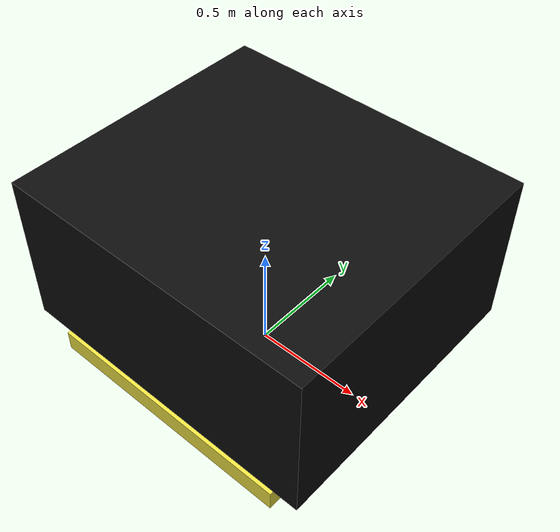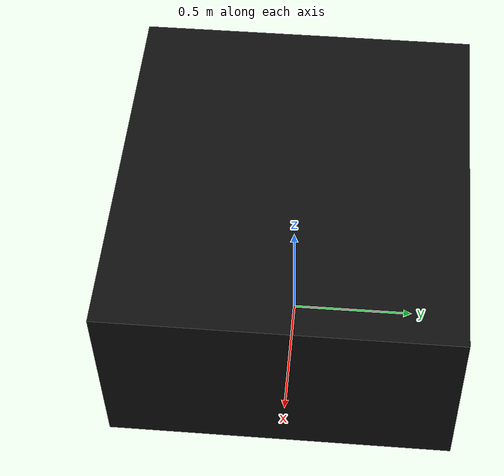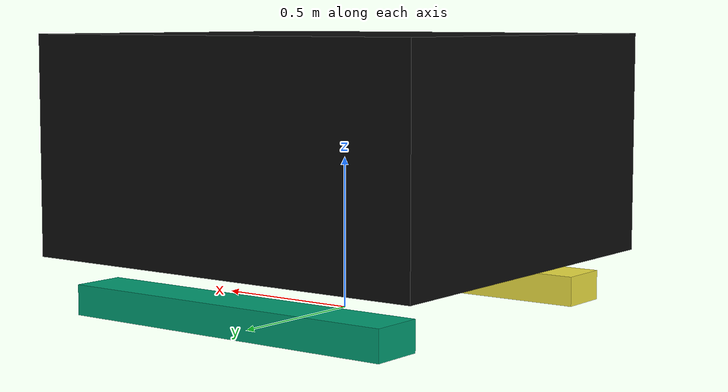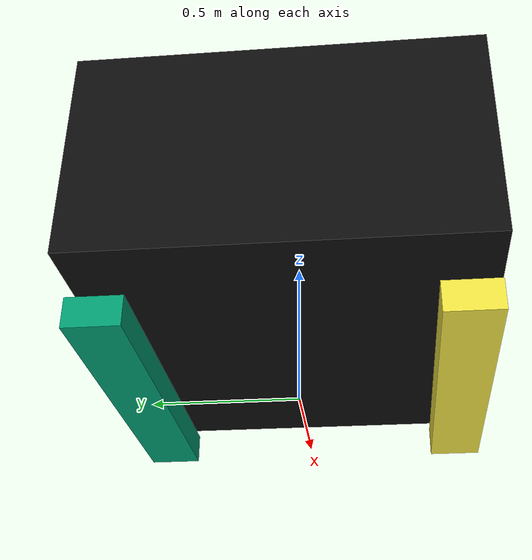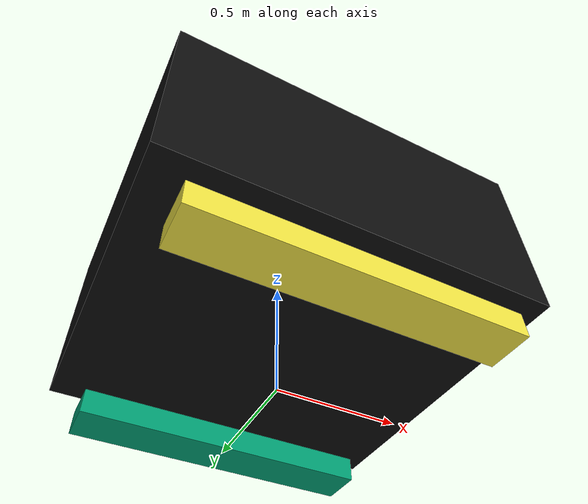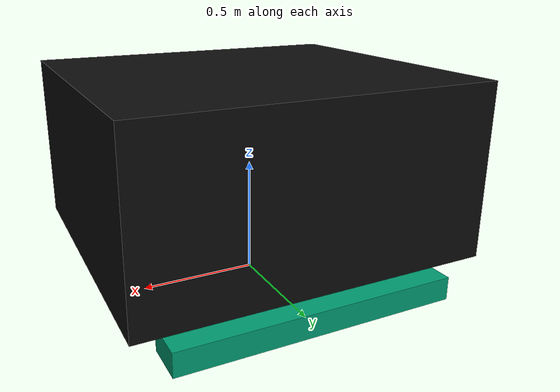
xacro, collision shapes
<?xml version="1.0"?>
<robot name="rovo" xmlns:xacro="http://www.ros.org/wiki/xacro">

  <xacro:property name="pkg"             value="rovo_gz_description"/>

  <xacro:property name="base_mass"       value="340.0"/>  <!-- total 350 kg: 340 body + 2x5 tracks -->
  <xacro:property name="base_x"          value="1.464"/>
  <xacro:property name="base_y"          value="1.312"/>
  <xacro:property name="base_z"          value="0.728"/>

  <!-- Track geometry — equivalent flat contact patch -->
  <xacro:property name="track_mass"      value="5.0"/>
  <xacro:property name="track_len"       value="1.20"/>   <!-- X: along forward -->
  <xacro:property name="track_width"     value="0.18"/>   <!-- Y: side-to-side -->
  <xacro:property name="track_height"    value="0.10"/>   <!-- Z: thickness -->
  <xacro:property name="track_y"         value="0.547"/>  <!-- half-separation -->
  <xacro:property name="track_z"         value="0.05"/>   <!-- track center Z (bottom @ 0) -->

  <!-- Macros                                                       -->
  <xacro:macro name="box_inertia" params="m x y z cx:=0 cy:=0 cz:=0">
    <inertial>
      <origin xyz="${cx} ${cy} ${cz}" rpy="0 0 0"/>
      <mass value="${m}"/>
      <inertia
        ixx="${m*(y*y+z*z)/12.0}" ixy="0" ixz="0"
        iyy="${m*(x*x+z*z)/12.0}" iyz="0"
        izz="${m*(x*x+y*y)/12.0}"/>
    </inertial>
  </xacro:macro>

  <xacro:macro name="track" params="side reflect">
    <link name="${side}_track">
      <collision>
        <origin xyz="0 0 0" rpy="0 0 0"/>
        <geometry>
          <box size="${track_len} ${track_width} ${track_height}"/>
        </geometry>
      </collision>
      <xacro:box_inertia m="${track_mass}"
                         x="${track_len}" y="${track_width}" z="${track_height}"/>
    </link>

    <joint name="${side}_track_joint" type="fixed">
      <parent link="base_link"/>
      <child  link="${side}_track"/>
      <origin xyz="0 ${reflect*track_y} ${track_z}" rpy="0 0 0"/>
    </joint>

    <!-- Prevent URDF→SDF fixed-joint lumping. Without this, track link is
         merged into base_footprint and TrackController plugin cannot find
         it by name → robot will not move. -->
    <gazebo reference="${side}_track_joint">
      <preserveFixedJoint>true</preserveFixedJoint>
      <disableFixedJointLumping>true</disableFixedJointLumping>
    </gazebo>

    <gazebo reference="${side}_track">
      <!-- mu1: longitudinal grip; mu2: lateral — higher reduces sideways skid.
           kp/kd: stiff contact for 60 kg robot prevents sinking/bouncing. -->
      <mu1>1.5</mu1>
      <mu2>0.8</mu2>
      <kp>5e6</kp>
      <kd>200.0</kd>
      <minDepth>0.002</minDepth>
      <maxVel>0.5</maxVel>
    </gazebo>
  </xacro:macro>

  <!-- base_footprint (ground projection, child of base_link)       -->
  <!-- base_link is the model root: DLIO owns odom->base_link, so    -->
  <!-- base_footprint must hang UNDER base_link to avoid base_link    -->
  <!-- having two parents (odom + base_footprint) -> split TF tree.   -->
  <link name="base_footprint"/>

  <joint name="base_footprint_to_base" type="fixed">
    <parent link="base_link"/>
    <child  link="base_footprint"/>
    <origin xyz="0 0 0" rpy="0 0 0"/>
  </joint>

  <!-- base_link                                                    -->
  <link name="base_link">

    <xacro:macro name="vis" params="name">
      <visual>
        <origin xyz="0 0 0" rpy="0 0 ${pi/2}"/>
        <geometry>
          <mesh filename="package://${pkg}/meshes/visual/${name}.dae"/>
        </geometry>
      </visual>
    </xacro:macro>

    <xacro:macro name="vis_black" params="name">
      <visual>
        <origin xyz="0 0 0" rpy="0 0 ${pi/2}"/>
        <geometry>
          <mesh filename="package://${pkg}/meshes/visual/${name}.dae"/>
        </geometry>
        <material name="track_black">
          <color rgba="0.05 0.05 0.05 1.0"/>
        </material>
      </visual>
    </xacro:macro>

    <xacro:macro name="vis_sensor" params="name">
      <visual>
        <origin xyz="0 0 0" rpy="0 0 ${pi/2}"/>
        <geometry>
          <mesh filename="package://${pkg}/meshes/visual/${name}.dae"/>
        </geometry>
      </visual>
    </xacro:macro>

    <xacro:vis name="body"/>
    <xacro:vis name="camera_holder"/>
    <xacro:vis name="lightbody"/>
    <xacro:vis name="pipes"/>
    <xacro:vis name="wheel_holder"/>
    <xacro:vis_black name="wheelTrack_new"/>
    <xacro:vis_black name="wheelTrack_new_001"/>

    <!-- Sensor visuals — world-space baked from body_modified.glb -->
    <xacro:vis_sensor name="sensor_IMU_LIdar_GPS_Mini"/>
    <xacro:vis_sensor name="sensor_velodyne_lidar"/>
    <xacro:vis_sensor name="sensor_Realsense_camera"/>
    <xacro:vis_sensor name="sensor_GPS_antenna"/>
    <xacro:vis_sensor name="sensor_Sensor_head_mount"/>

    <xacro:vis name="wl"/>
    <xacro:vis name="wl1"/>
    <xacro:vis name="wl2"/>
    <xacro:vis name="wl3"/>
    <xacro:vis name="wl4"/>
    <xacro:vis name="wl5"/>
    <xacro:vis name="wl6"/>
    <xacro:vis name="wr"/>
    <xacro:vis name="wr1"/>
    <xacro:vis name="wr2"/>
    <xacro:vis name="wr3"/>
    <xacro:vis name="wr4"/>
    <xacro:vis name="wr5"/>
    <xacro:vis name="wr6"/>

    <!-- Chassis collision lifted so tracks are the only ground contact. -->
    <collision name="chassis_box">
      <origin xyz="0.013 0 0.544" rpy="0 0 0"/>
      <geometry>
        <box size="${base_x} ${base_y} ${base_z}"/>
      </geometry>
    </collision>

    <xacro:box_inertia m="${base_mass}" x="${base_x}" y="${base_y}" z="${base_z}"
                       cx="0" cy="0" cz="0.40"/>
  </link>

  <gazebo reference="base_link">
    <mu1>0.05</mu1>
    <mu2>0.05</mu2>
    <kp>5e5</kp>
    <kd>50.0</kd>
    <minDepth>0.003</minDepth>
  </gazebo>

  <!-- Track links                                                  -->
  <xacro:track side="left"  reflect="1"/>
  <xacro:track side="right" reflect="-1"/>

  <!-- IMU                                                          -->
  <link name="phiimu_frame2">
    <inertial>
      <mass value="0.01"/>
      <inertia ixx="1e-6" ixy="0" ixz="0" iyy="1e-6" iyz="0" izz="1e-6"/>
    </inertial>
  </link>
  <joint name="imu_joint" type="fixed">
    <parent link="base_link"/>
    <child  link="phiimu_frame2"/>
    <origin xyz="0.548019 -0.02886 0.829417" rpy="-0.004375 -0.060599 1.610255"/>
  </joint>

  <!-- Velodyne                                                     -->
  <link name="velodyne">
    <inertial>
      <mass value="0.83"/>
      <inertia ixx="1e-3" ixy="0" ixz="0" iyy="1e-3" iyz="0" izz="1e-3"/>
    </inertial>
  </link>
  <joint name="velodyne_joint" type="fixed">
    <parent link="base_link"/>
    <child  link="velodyne"/>
    <origin xyz="0.475 0 1.05" rpy="0 0 0"/>
  </joint>

  <!-- GPS                                                          -->
  <link name="gps_link">
    <inertial>
      <mass value="0.05"/>
      <inertia ixx="1e-6" ixy="0" ixz="0" iyy="1e-6" iyz="0" izz="1e-6"/>
    </inertial>
  </link>
  <joint name="gps_joint" type="fixed">
    <parent link="base_link"/>
    <child  link="gps_link"/>
    <origin xyz="0.475 0 1.11" rpy="0 0 0"/>
  </joint>

  <!-- RealSense Depth Camera                                       -->
  <link name="realsense_link">
    <inertial>
      <mass value="0.072"/>
      <inertia ixx="1e-5" ixy="0" ixz="0" iyy="1e-5" iyz="0" izz="1e-5"/>
    </inertial>
  </link>

  <joint name="realsense_joint" type="fixed">
    <parent link="base_link"/>
    <child  link="realsense_link"/>
    <origin xyz="0.55 0 1.25" rpy="0 -0.1745 0"/>
  </joint>

  <!-- Gazebo Sim plugins                                           -->
  <gazebo>
    <!-- TrackedVehicle: top-level skid-steer controller.
         Subscribes /cmd_vel (Twist), distributes to TrackController. -->
    <plugin filename="gz-sim-tracked-vehicle-system"
            name="gz::sim::systems::TrackedVehicle">
      <left_track><link>left_track</link></left_track>
      <right_track><link>right_track</link></right_track>
      <tracks_separation>${2*track_y}</tracks_separation>
      <tracks_height>${track_height}</tracks_height>
      <steering_efficiency>0.75</steering_efficiency>
      <topic>cmd_vel_gcs</topic>
      <odom_topic>odom</odom_topic>
      <tf_topic></tf_topic>
      <frame_id>odom</frame_id>
      <child_frame_id>base_footprint</child_frame_id>
      <odom_publish_frequency>50</odom_publish_frequency>
    </plugin>

    <!-- Per-track friction controllers — simulate belt grip+slip. -->
    <plugin filename="gz-sim-track-controller-system"
            name="gz::sim::systems::TrackController">
      <link>left_track</link>
      <min_velocity>-3.0</min_velocity>
      <max_velocity>3.0</max_velocity>
    </plugin>

    <plugin filename="gz-sim-track-controller-system"
            name="gz::sim::systems::TrackController">
      <link>right_track</link>
      <min_velocity>-3.0</min_velocity>
      <max_velocity>3.0</max_velocity>
    </plugin>

    <!-- No JointStatePublisher: tracks are fixed, no continuous joints. -->

    <plugin filename="gz-sim-imu-system"
            name="gz::sim::systems::Imu"/>
  </gazebo>

  <gazebo reference="phiimu_frame2">
    <sensor name="imu_sensor" type="imu">
      <always_on>1</always_on>
      <update_rate>100</update_rate>
      <topic>imu/data2</topic>
      <gz_frame_id>phiimu_frame2</gz_frame_id>
    </sensor>
  </gazebo>

  <gazebo reference="velodyne">
    <sensor name="velodyne_sensor" type="gpu_lidar">
      <always_on>1</always_on>
      <update_rate>10</update_rate>
      <topic>/velodyne_points</topic>
      <gz_frame_id>velodyne</gz_frame_id>
      <lidar>
        <scan>
          <horizontal>
            <samples>1875</samples><resolution>1</resolution>
            <min_angle>-${pi}</min_angle><max_angle>${pi}</max_angle>
          </horizontal>
          <vertical>
            <samples>16</samples><resolution>1</resolution>
            <min_angle>-${15.0*pi/180.0}</min_angle>
            <max_angle>${15.0*pi/180.0}</max_angle>
          </vertical>
        </scan>
        <range><min>0.1</min><max>100.0</max><resolution>0.01</resolution></range>
        <noise><type>gaussian</type><mean>0.0</mean><stddev>0.01</stddev></noise>
      </lidar>
    </sensor>
  </gazebo>

  <gazebo reference="realsense_link">
    <sensor name="realsense_sensor" type="rgbd_camera">
      <always_on>1</always_on>
      <update_rate>30</update_rate>
      <topic>camera/camera</topic>
      <gz_frame_id>realsense_link</gz_frame_id>
      <camera>
        <horizontal_fov>1.5184</horizontal_fov>
        <image>
          <width>640</width>
          <height>480</height>
          <format>RGB_INT8</format>
        </image>
        <clip>
          <near>0.1</near>
          <far>10.0</far>
        </clip>
        <depth_camera>
          <clip><near>0.105</near><far>10.0</far></clip>
        </depth_camera>
      </camera>
    </sensor>
  </gazebo>

  <!-- GPS NavSat                                                    -->
  <gazebo reference="gps_link">
    <sensor name="gps_sensor" type="navsat">
      <always_on>1</always_on>
      <update_rate>10</update_rate>
      <topic>gps/fix1</topic>
      <gz_frame_id>gps_link</gz_frame_id>
    </sensor>
  </gazebo>

</robot>
